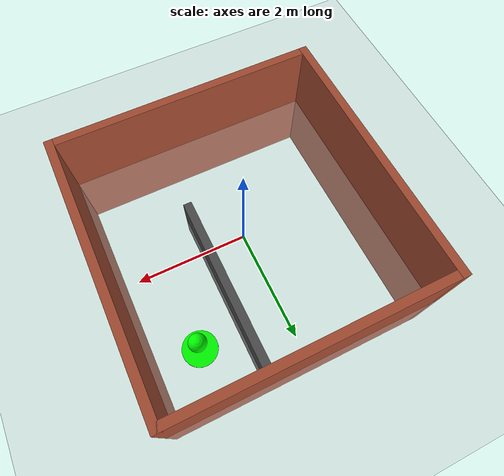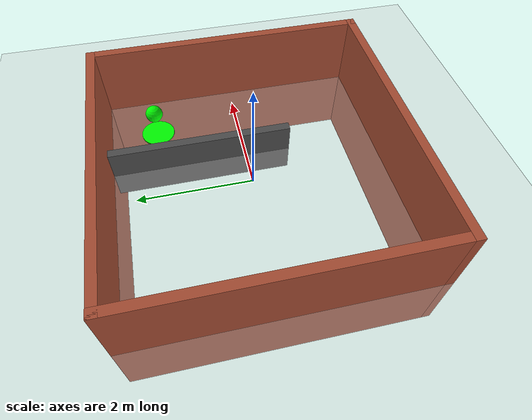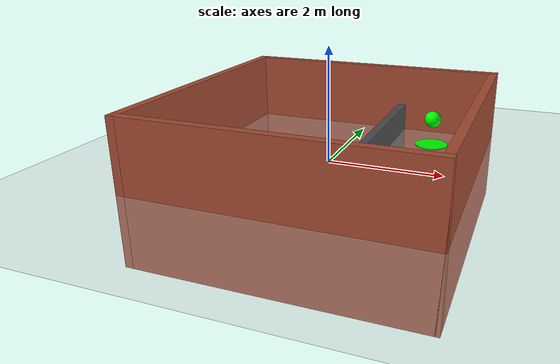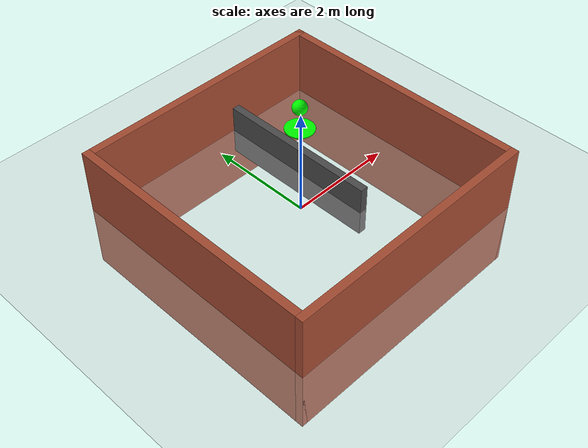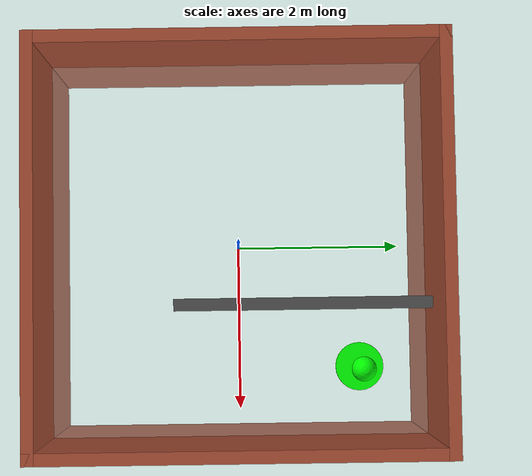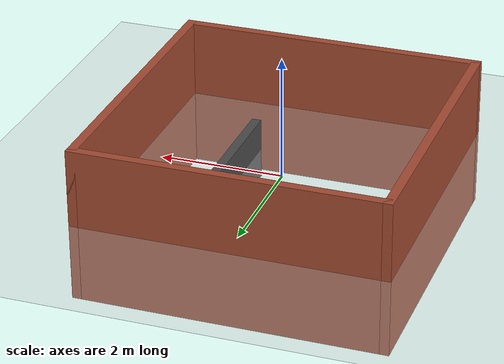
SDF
<?xml version='1.0'?>
<sdf version='1.7'>
  <world name='default'>
    <include>
      <uri>model://sun</uri>
    </include>

    <include>
      <uri>model://ground_plane</uri>
    </include>

    <physics type='ode'>
      <max_step_size>0.001</max_step_size>
      <real_time_factor>1</real_time_factor>
      <real_time_update_rate>1000</real_time_update_rate>
    </physics>

    <plugin name="gazebo_ros_state" filename="libgazebo_ros_state.so">
      <ros><namespace>/</namespace></ros>
    </plugin>

    <model name='maze_medium'>
      <static>1</static>
      <pose>0 0 0 0 0 0</pose>

      <link name='Wall_North'>
        <pose>0 2.425 0 0 0 0</pose>
        <collision name='Collision'><geometry><box><size>5 0.15 2.5</size></box></geometry></collision>
        <visual name='Visual'><geometry><box><size>5 0.15 2.5</size></box></geometry>
          <material><script><uri>file://media/materials/scripts/gazebo.material</uri><name>Gazebo/Bricks</name></script></material>
        </visual>
      </link>

      <link name='Wall_South'>
        <pose>0 -2.425 0 0 0 0</pose>
        <collision name='Collision'><geometry><box><size>5 0.15 2.5</size></box></geometry></collision>
        <visual name='Visual'><geometry><box><size>5 0.15 2.5</size></box></geometry>
          <material><script><uri>file://media/materials/scripts/gazebo.material</uri><name>Gazebo/Bricks</name></script></material>
        </visual>
      </link>

      <link name='Wall_East'>
        <pose>2.425 0 0 0 0 -1.5708</pose>
        <collision name='Collision'><geometry><box><size>5 0.15 2.5</size></box></geometry></collision>
        <visual name='Visual'><geometry><box><size>5 0.15 2.5</size></box></geometry>
          <material><script><uri>file://media/materials/scripts/gazebo.material</uri><name>Gazebo/Bricks</name></script></material>
        </visual>
      </link>

      <link name='Wall_West'>
        <pose>-2.425 0 0 0 0 1.5708</pose>
        <collision name='Collision'><geometry><box><size>5 0.15 2.5</size></box></geometry></collision>
        <visual name='Visual'><geometry><box><size>5 0.15 2.5</size></box></geometry>
          <material><script><uri>file://media/materials/scripts/gazebo.material</uri><name>Gazebo/Bricks</name></script></material>
        </visual>
      </link>

      <link name='Obstacle_Center'>
        <pose>0.7 0.8 0 0 0 1.5708</pose>
        <collision name='Collision'><geometry><box><size>3.2 0.15 1.0</size></box></geometry></collision>
        <visual name='Visual'><geometry><box><size>3.2 0.15 1.0</size></box></geometry>
          <material><ambient>0.3 0.3 0.3 1</ambient><diffuse>0.3 0.3 0.3 1</diffuse></material>
        </visual>
      </link>
    </model>

    <model name='target_mark'>
      <static>1</static>
      <pose>1.5 1.5 0.01 0 0 0</pose>
      <link name='link_0'>
        <visual name='visual'>
          <geometry><cylinder><radius>0.3</radius><length>0.02</length></cylinder></geometry>
          <material>
            <ambient>0 1 0 1</ambient>
            <diffuse>0 1 0 1</diffuse>
          </material>
        </visual>
      </link>
    </model>

    <model name='target_beacon'>
      <static>1</static>
      <pose>1.5 1.5 0.5 0 0 0</pose>
      <link name='link_1'>
        <visual name='visual'>
          <geometry>
            <sphere><radius>0.15</radius></sphere>
          </geometry>
          <material>
            <ambient>0 1 0 1</ambient>
            <diffuse>0 1 0 1</diffuse>
            <emissive>0 0.8 0 1</emissive>
          </material>
        </visual>
        <collision name='collision'>
          <geometry><sphere><radius>0.15</radius></sphere></geometry>
        </collision>
      </link>
    </model>

    <gui fullscreen='0'>
      <camera name='user_camera'>
        <pose>0 0 10 0 1.57 1.57</pose> <view_controller>orbit</view_controller>
      </camera>
    </gui>

  </world>
</sdf>
